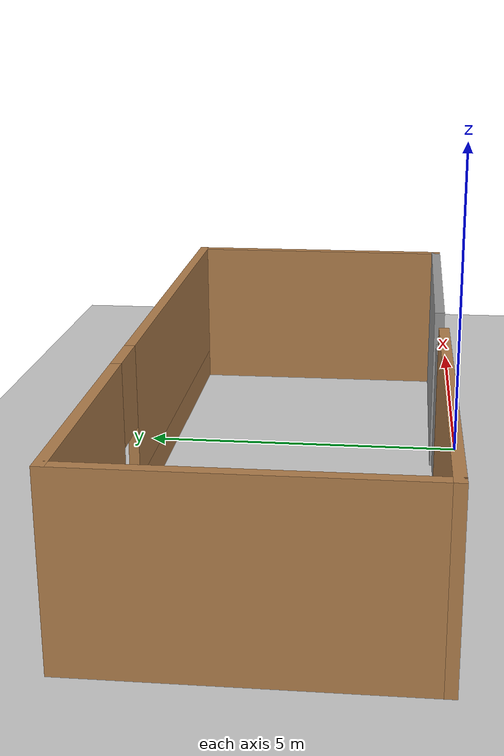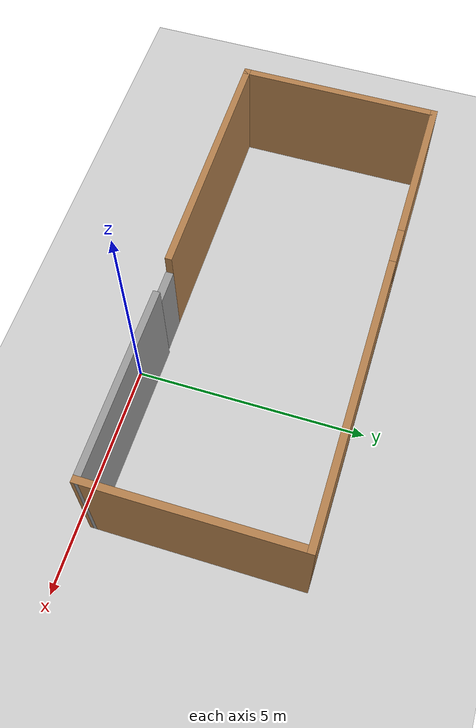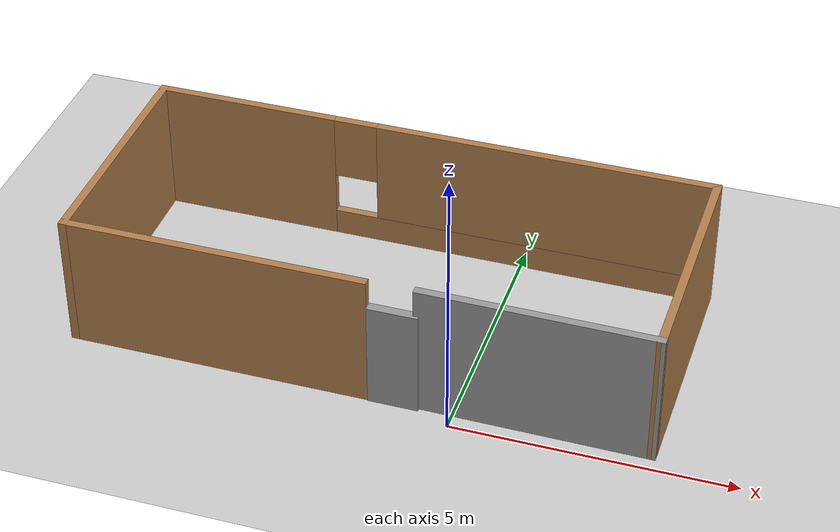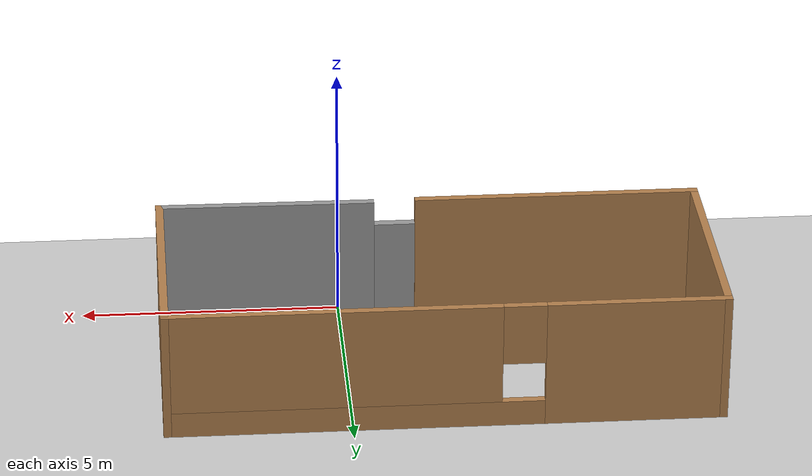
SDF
<sdf version="1.7">
 <world name="default">
  <model name="ground_plane">
   <static>1</static>
   <link name="link">
    <collision name="collision">
     <geometry><plane><normal>0 0 1</normal><size>100 100</size></plane></geometry>
     <surface>
      <contact><collide_bitmask>65535</collide_bitmask></contact>
      <friction><ode><mu>100</mu><mu2>50</mu2></ode></friction>
     </surface>
    </collision>
    <visual name="visual">
     <cast_shadows>0</cast_shadows>
     <geometry><plane><normal>0 0 1</normal><size>100 100</size></plane></geometry>
     <material>
      <script><uri>file://media/materials/scripts/gazebo.material</uri><name>Gazebo/Grey</name></script>
     </material>
    </visual>
   </link>
  </model>
  <light name="sun" type="directional">
   <pose>0 0 10 0 -0 0</pose>
   <diffuse>0.8 0.8 0.8 1</diffuse>
   <specular>0.2 0.2 0.2 1</specular>
   <attenuation>
    <range>1000</range>
    <constant>0.9</constant>
    <linear>0.01</linear>
    <quadratic>0.001</quadratic>
   </attenuation>
   <direction>-0.5 0.1 -0.9</direction>
   <spot><inner_angle>0</inner_angle><outer_angle>0</outer_angle><falloff>0</falloff></spot>
  </light>
  <scene><shadows>0</shadows><ambient>0.4 0.4 0.4 1</ambient><background>0.7 0.7 0.7 1</background></scene>
  <physics type="ode">
   <real_time_update_rate>1000</real_time_update_rate>
   <max_step_size>0.001</max_step_size>
   <real_time_factor>1</real_time_factor>
   <ode>
    <solver>
     <type>quick</type>
     <iters>150</iters>
     <precon_iters>0</precon_iters>
     <sor>1.4</sor>
     <use_dynamic_moi_rescaling>1</use_dynamic_moi_rescaling>
    </solver>
    <constraints>
     <cfm>1e-05</cfm>
     <erp>0.2</erp>
     <contact_max_correcting_vel>2000</contact_max_correcting_vel>
     <contact_surface_layer>0.01</contact_surface_layer>
    </constraints>
   </ode>
  </physics>
  <gravity>0 0 -9.8</gravity>
  <magnetic_field>6e-06 2.3e-05 -4.2e-05</magnetic_field>
  <atmosphere type="adiabatic"/>
  <audio><device>default</device></audio>
  <spherical_coordinates>
   <surface_model>EARTH_WGS84</surface_model>
   <latitude_deg>0</latitude_deg>
   <longitude_deg>0</longitude_deg>
   <elevation>0</elevation>
   <heading_deg>0</heading_deg>
  </spherical_coordinates>
  <model name="kiban1">
   <pose>-1.72739 2.48729 0 0 -0 0</pose>
   <link name="Door_0">
    <collision name="Door_0_Collision">
     <geometry><box><size>0.9 0.17 2</size></box></geometry>
     <pose>0 0 1 0 -0 0</pose>
    </collision>
    <visual name="Door_0_Visual">
     <pose>0 0 1 0 -0 0</pose>
     <geometry><box><size>0.9 0.17 2</size></box></geometry>
     <material>
      <script><uri>file://media/materials/scripts/gazebo.material</uri><name>Gazebo/Grey</name></script>
     </material>
    </visual>
    <pose>0.701026 -2.18255 0 0 -0 0</pose>
   </link>
   <link name="Wall_0">
    <collision name="Wall_0_Collision">
     <geometry><box><size>5.5 0.15 2.5</size></box></geometry>
     <pose>0 0 1.25 0 -0 0</pose>
    </collision>
    <visual name="Wall_0_Visual">
     <pose>0 0 1.25 0 -0 0</pose>
     <geometry><box><size>5.5 0.15 2.5</size></box></geometry>
     <material>
      <script><uri>file://media/materials/scripts/gazebo.material</uri><name>Gazebo/Wood</name></script>
      <ambient>1 1 1 1</ambient>
     </material>
     <meta><layer>0</layer></meta>
    </visual>
    <pose>-2.50035 -2.17465 0 0 -0 3.14159</pose>
   </link>
   <link name="Wall_1">
    <collision name="Wall_1_Collision">
     <geometry><box><size>4.5 0.15 2.5</size></box></geometry>
     <pose>0 0 1.25 0 -0 0</pose>
    </collision>
    <visual name="Wall_1_Visual">
     <pose>0 0 1.25 0 -0 0</pose>
     <geometry><box><size>4.5 0.15 2.5</size></box></geometry>
     <material>
      <script><uri>file://media/materials/scripts/gazebo.material</uri><name>Gazebo/Wood</name></script>
      <ambient>1 1 1 1</ambient>
     </material>
     <meta><layer>0</layer></meta>
    </visual>
    <pose>-5.17535 0.000353 0 0 -0 1.5708</pose>
   </link>
   <link name="Wall_2">
    <pose>-0.000353 2.17535 0 0 -0 0</pose>
    <visual name="Wall_2_Visual_0">
     <pose>-3.53832 0 1.25 0 -0 0</pose>
     <geometry><box><size>3.42336 0.15 2.5</size></box></geometry>
     <material>
      <script><uri>file://media/materials/scripts/gazebo.material</uri><name>Gazebo/Wood</name></script>
      <ambient>1 1 1 1</ambient>
     </material>
     <meta><layer>0</layer></meta>
    </visual>
    <collision name="Wall_2_Collision_0">
     <geometry><box><size>3.42336 0.15 2.5</size></box></geometry>
     <pose>-3.53832 0 1.25 0 -0 0</pose>
    </collision>
    <visual name="Wall_2_Visual_1">
     <pose>1.71168 0 0.25 0 -0 0</pose>
     <geometry><box><size>7.07664 0.15 0.5</size></box></geometry>
     <material>
      <script><uri>file://media/materials/scripts/gazebo.material</uri><name>Gazebo/Wood</name></script>
      <ambient>1 1 1 1</ambient>
     </material>
     <meta><layer>0</layer></meta>
    </visual>
    <collision name="Wall_2_Collision_1">
     <geometry><box><size>7.07664 0.15 0.5</size></box></geometry>
     <pose>1.71168 0 0.25 0 -0 0</pose>
    </collision>
    <visual name="Wall_2_Visual_2">
     <pose>2.11168 0 1.5 0 -0 0</pose>
     <geometry><box><size>6.27664 0.15 2</size></box></geometry>
     <material>
      <script><uri>file://media/materials/scripts/gazebo.material</uri><name>Gazebo/Wood</name></script>
      <ambient>1 1 1 1</ambient>
     </material>
     <meta><layer>0</layer></meta>
    </visual>
    <collision name="Wall_2_Collision_2">
     <geometry><box><size>6.27664 0.15 2</size></box></geometry>
     <pose>2.11168 0 1.5 0 -0 0</pose>
    </collision>
    <visual name="Wall_2_Visual_3">
     <pose>-1.42664 0 1.9 0 -0 0</pose>
     <geometry><box><size>0.8 0.15 1.2</size></box></geometry>
     <material>
      <script><uri>file://media/materials/scripts/gazebo.material</uri><name>Gazebo/Wood</name></script>
      <ambient>1 1 1 1</ambient>
     </material>
     <meta><layer>0</layer></meta>
    </visual>
    <collision name="Wall_2_Collision_3">
     <geometry><box><size>0.8 0.15 1.2</size></box></geometry>
     <pose>-1.42664 0 1.9 0 -0 0</pose>
    </collision>
   </link>
   <link name="Wall_3">
    <collision name="Wall_3_Collision">
     <geometry><box><size>4.5 0.15 2.5</size></box></geometry>
     <pose>0 0 1.25 0 -0 0</pose>
    </collision>
    <visual name="Wall_3_Visual">
     <pose>0 0 1.25 0 -0 0</pose>
     <geometry><box><size>4.5 0.15 2.5</size></box></geometry>
     <material>
      <script><uri>file://media/materials/scripts/gazebo.material</uri><name>Gazebo/Wood</name></script>
      <ambient>1 1 1 1</ambient>
     </material>
     <meta><layer>0</layer></meta>
    </visual>
    <pose>5.17465 0.000353 0 0 -0 -1.5708</pose>
   </link>
   <link name="Wall_6">
    <collision name="Wall_6_Collision">
     <geometry><box><size>4.20745 0.15 2.5</size></box></geometry>
     <pose>0 0 1.25 0 -0 0</pose>
    </collision>
    <visual name="Wall_6_Visual">
     <pose>0 0 1.25 0 -0 0</pose>
     <geometry><box><size>4.20745 0.15 2.5</size></box></geometry>
     <material>
      <script><uri>file://media/materials/scripts/gazebo.material</uri><name>Gazebo/Grey</name></script>
      <ambient>1 1 1 1</ambient>
     </material>
     <meta><layer>0</layer></meta>
    </visual>
    <pose>3.14601 -2.15547 0 0 -0 -0.009454</pose>
   </link>
   <static>1</static>
  </model>
 </world>
</sdf>
